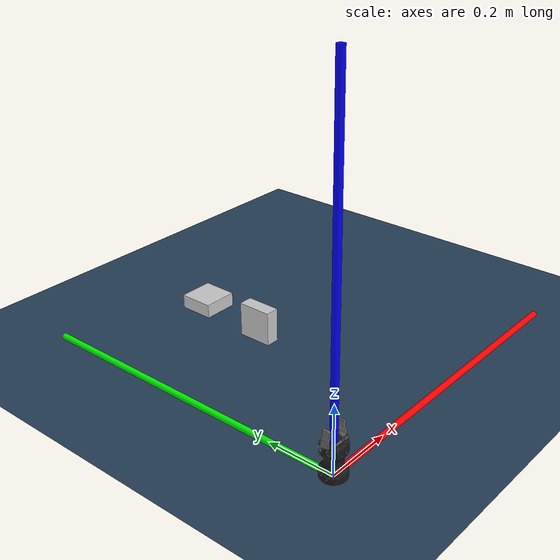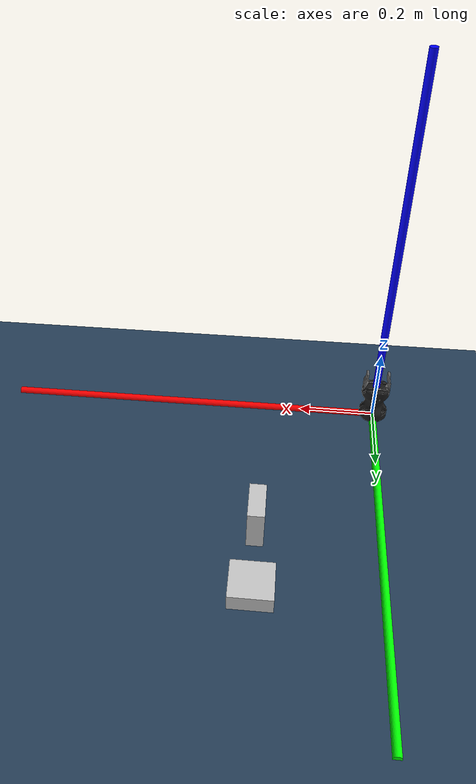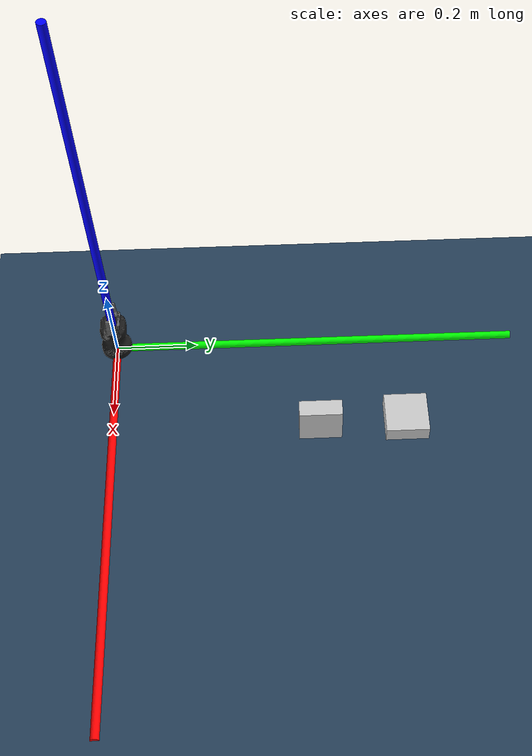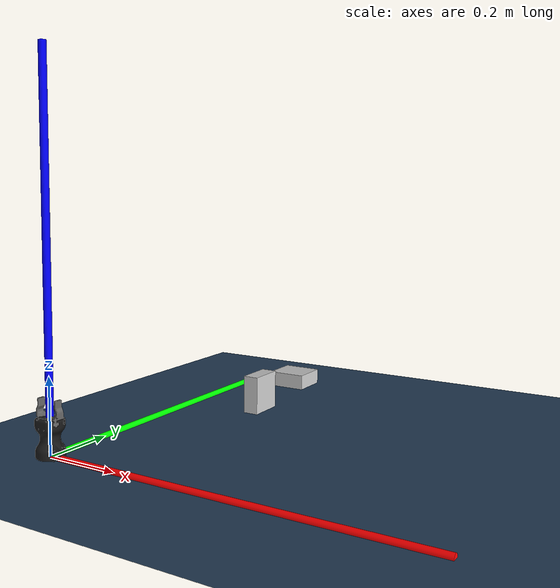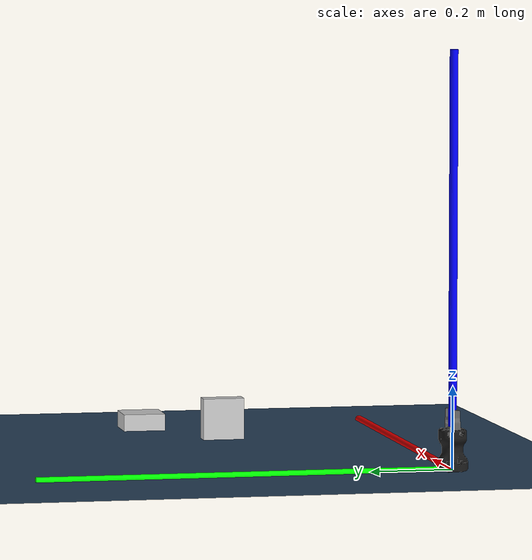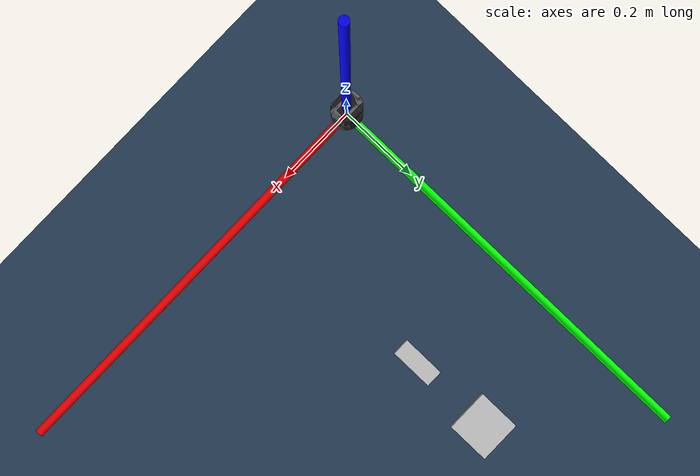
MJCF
<mujoco model="scene">

	<option timestep="0.0005" integrator="RK4" solver="Newton" gravity="0 0 -9.82"/>

	<include file="hande/hande.xml"/>

	<statistic center="0.4 0 0.4" extent="1"/>

	<visual>
		<headlight diffuse="0.6 0.6 0.6" ambient="0.1 0.1 0.1" specular="0 0 0"/>
		<rgba haze="0.15 0.25 0.35 1"/>
		<global azimuth="120" elevation="-20"/>
	</visual>

	<asset>
		<texture type="skybox" builtin="gradient" rgb1="0.3 0.5 0.7" rgb2="0 0 0" width="512" height="3072"/>
		<texture type="2d" name="groundplane" builtin="checker" mark="edge" rgb1="0.2 0.3 0.4" rgb2="0.1 0.2 0.3" markrgb="0.8 0.8 0.8" width="300" height="300"/>
		<material name="groundplane" texture="groundplane" texuniform="true" texrepeat="5 5" reflectance="0.2"/>
	</asset>

	<worldbody>
		<!-- boxes to pick up - start -->
		<body name="box1" pos="0.3 0.5 0.1" quat="1 0 0 1">
			<freejoint/>
			<geom type="box" size="0.05 0.02 0.05"  rgba="0.8 0.8 0.8 1" mass="1" solimp="0.9 0.95 0.001 0.9 4"/>
		</body>

		<body name="box2" pos="0.3 0.7 0.1">
			<freejoint/>
			<geom type="box" size="0.05 0.05 0.02"  rgba="0.8 0.8 0.8 1" mass="5"/>
		</body>
		<!-- boxes to pick up - end -->

		<light pos="0 0 1.5" dir="0 0 -1" directional="true"/>
		<geom name="floor" size="0 0 0.05" type="plane" material="groundplane"/>

		<geom group="2" type="cylinder" contype="0" conaffinity="0" fromto="0 0 0 1 0 0" size="0.01" rgba="1 0 0 1"/>
		<geom group="2" type="cylinder" contype="0" conaffinity="0" fromto="0 0 0 0 1 0" size="0.01" rgba="0 1 0 1"/>
		<geom group="2" type="cylinder" contype="0" conaffinity="0" fromto="0 0 0 0 0 1" size="0.01" rgba="0 0 1 1"/>
	</worldbody>

</mujoco>

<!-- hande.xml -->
<mujoco model="robotiq_hande">
    <compiler angle="radian" meshdir="assets/stl/" />
    <size njmax="500" nconmax="100" />
    <asset>
        <mesh name="hand-e" file="hand-e.stl" />
        <mesh name="finger_1" file="finger_1.stl" />
        <mesh name="finger_2" file="finger_2.stl" />
    </asset>
    <worldbody>
        <geom type="mesh" contype="0" conaffinity="0" group="1" rgba="0.1 0.1 0.1 1" mesh="hand-e" />
        <geom type="mesh" rgba="0.1 0.1 0.1 1" mesh="hand-e" />
        <body name="hande_left_finger" pos="0 0 0.099">
            <inertial pos="0.02262 -0.00759 0.00738" quat="0.871952 0.0369732 -0.211073 0.440205" mass="0.03804" diaginertia="1.22763e-05 1.22763e-05 1.22763e-05" />
            <joint name="hande_left_finger_joint" pos="0 0 0" axis="-1 0 0" type="slide" limited="true" range="0 0.025" />
            <geom type="mesh" contype="0" conaffinity="0" group="1" rgba="0.4 0.4 0.4 1" mesh="finger_1" />
            <geom type="mesh" rgba="0.4 0.4 0.4 1" mesh="finger_1" />
        </body>
        <body name="hande_right_finger" pos="0 0 0.099">
            <inertial pos="-0.02262 0.00759 0.00738" quat="0.871952 -0.0369732 0.211073 0.440205" mass="0.03804" diaginertia="1.22763e-05 1.22763e-05 1.22763e-05" />
            <joint name="hande_right_finger_joint" pos="0 0 0" axis="1 0 0" type="slide" limited="true" range="0 0.025" />
            <geom type="mesh" contype="0" conaffinity="0" group="1" rgba="0.4 0.4 0.4 1" mesh="finger_2" />
            <geom type="mesh" rgba="0.4 0.4 0.4 1" mesh="finger_2" />
        </body>
    </worldbody>
</mujoco>
